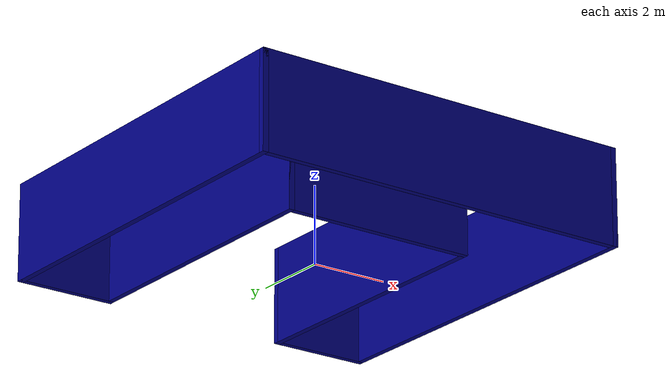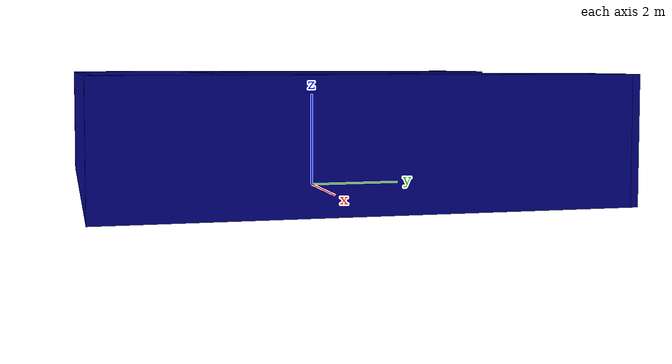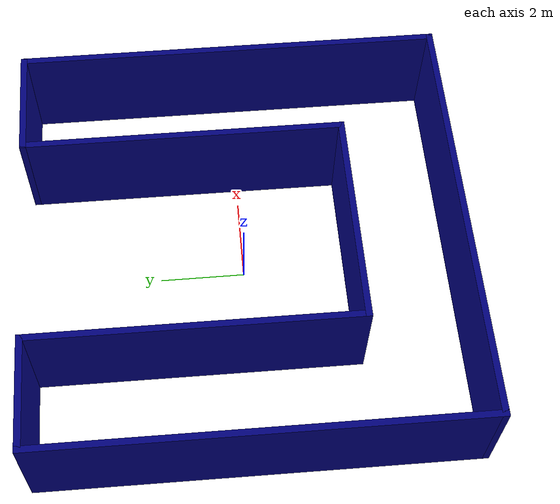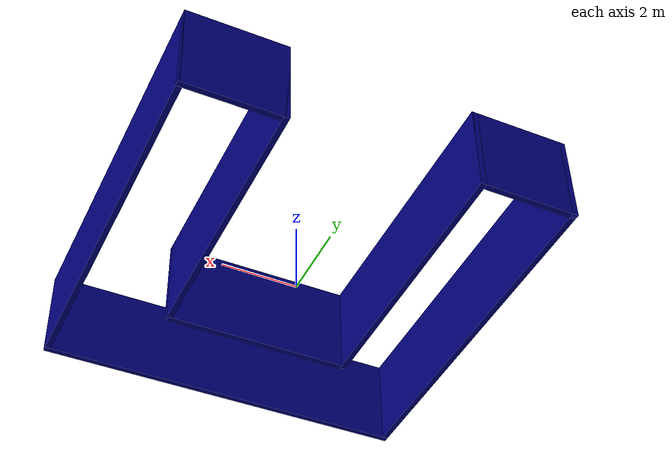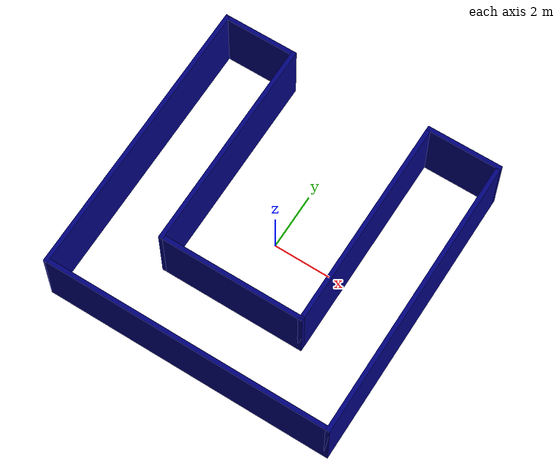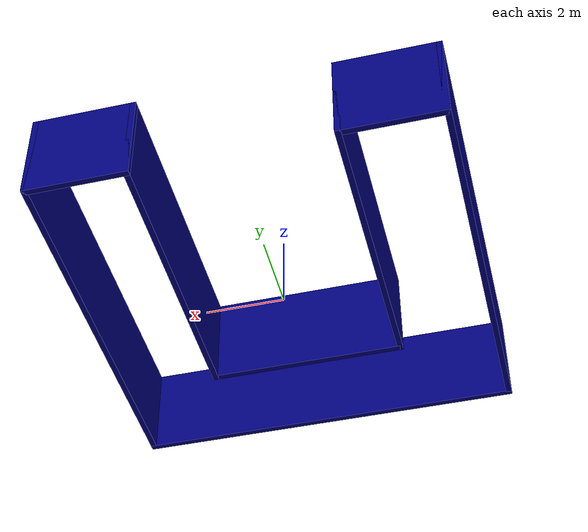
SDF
<?xml version='1.0'?>
<sdf version='1.6'>
  <model name='demo'>
    <pose frame=''>0 0 0 0 -0 0</pose>
    <link name='Wall_17'>
      <collision name='Wall_17_Collision'>
        <geometry>
          <box>
            <size>10.15 0.15 2.5</size>
          </box>
        </geometry>
        <pose frame=''>0 0 1.25 0 -0 0</pose>
      </collision>
      <visual name='Wall_17_Visual'>
        <pose frame=''>0 0 1.25 0 -0 0</pose>
        <geometry>
          <box>
            <size>10.15 0.15 2.5</size>
          </box>
        </geometry>
        <material>
          <script>
            <uri>file://media/materials/scripts/gazebo.material</uri>
            <name>Gazebo/Grey</name>
          </script>
          <ambient>0 0 0.498039 1</ambient>
        </material>
      </visual>
      <pose frame=''>0 -5 0 0 -0 0</pose>
    </link>
    <link name='Wall_20'>
      <collision name='Wall_20_Collision'>
        <geometry>
          <box>
            <size>10.15 0.15 2.5</size>
          </box>
        </geometry>
        <pose frame=''>0 0 1.25 0 -0 0</pose>
      </collision>
      <visual name='Wall_20_Visual'>
        <pose frame=''>0 0 1.25 0 -0 0</pose>
        <geometry>
          <box>
            <size>10.15 0.15 2.5</size>
          </box>
        </geometry>
        <material>
          <script>
            <uri>file://media/materials/scripts/gazebo.material</uri>
            <name>Gazebo/Grey</name>
          </script>
          <ambient>0 0 0.498039 1</ambient>
        </material>
      </visual>
      <pose frame=''>5 0 0 0 -0 1.5708</pose>
    </link>
    <link name='Wall_26'>
      <collision name='Wall_26_Collision'>
        <geometry>
          <box>
            <size>10.15 0.15 2.5</size>
          </box>
        </geometry>
        <pose frame=''>0 0 1.25 0 -0 0</pose>
      </collision>
      <visual name='Wall_26_Visual'>
        <pose frame=''>0 0 1.25 0 -0 0</pose>
        <geometry>
          <box>
            <size>10.15 0.15 2.5</size>
          </box>
        </geometry>
        <material>
          <script>
            <uri>file://media/materials/scripts/gazebo.material</uri>
            <name>Gazebo/Grey</name>
          </script>
          <ambient>0 0 0.498039 1</ambient>
        </material>
      </visual>
      <pose frame=''>-5 0 0 0 -0 1.5708</pose>
    </link>
    <link name='Wall_29'>
      <collision name='Wall_29_Collision'>
        <geometry>
          <box>
            <size>2.65 0.15 2.5</size>
          </box>
        </geometry>
        <pose frame=''>0 0 1.25 0 -0 0</pose>
      </collision>
      <visual name='Wall_29_Visual'>
        <pose frame=''>0 0 1.25 0 -0 0</pose>
        <geometry>
          <box>
            <size>2.65 0.15 2.5</size>
          </box>
        </geometry>
        <material>
          <script>
            <uri>file://media/materials/scripts/gazebo.material</uri>
            <name>Gazebo/Grey</name>
          </script>
          <ambient>0 0 0.498039 1</ambient>
        </material>
      </visual>
      <pose frame=''>3.75 5 0 0 -0 0</pose>
    </link>
    <link name='Wall_31'>
      <collision name='Wall_31_Collision'>
        <geometry>
          <box>
            <size>2.65 0.15 2.5</size>
          </box>
        </geometry>
        <pose frame=''>0 0 1.25 0 -0 0</pose>
      </collision>
      <visual name='Wall_31_Visual'>
        <pose frame=''>0 0 1.25 0 -0 0</pose>
        <geometry>
          <box>
            <size>2.65 0.15 2.5</size>
          </box>
        </geometry>
        <material>
          <script>
            <uri>file://media/materials/scripts/gazebo.material</uri>
            <name>Gazebo/Grey</name>
          </script>
          <ambient>0 0 0.498039 1</ambient>
        </material>
      </visual>
      <pose frame=''>-3.75 5 0 0 -0 0</pose>
    </link>
    <link name='Wall_33'>
      <collision name='Wall_33_Collision'>
        <geometry>
          <box>
            <size>7.65 0.15 2.5</size>
          </box>
        </geometry>
        <pose frame=''>0 0 1.25 0 -0 0</pose>
      </collision>
      <visual name='Wall_33_Visual'>
        <pose frame=''>0 0 1.25 0 -0 0</pose>
        <geometry>
          <box>
            <size>7.65 0.15 2.5</size>
          </box>
        </geometry>
        <material>
          <script>
            <uri>file://media/materials/scripts/gazebo.material</uri>
            <name>Gazebo/Grey</name>
          </script>
          <ambient>0 0 0.498039 1</ambient>
        </material>
      </visual>
      <pose frame=''>-2.5 1.25 0 0 0 -1.5708</pose>
    </link>
    <link name='Wall_35'>
      <collision name='Wall_35_Collision'>
        <geometry>
          <box>
            <size>7.65 0.15 2.5</size>
          </box>
        </geometry>
        <pose frame=''>0 0 1.25 0 -0 0</pose>
      </collision>
      <visual name='Wall_35_Visual'>
        <pose frame=''>0 0 1.25 0 -0 0</pose>
        <geometry>
          <box>
            <size>7.65 0.15 2.5</size>
          </box>
        </geometry>
        <material>
          <script>
            <uri>file://media/materials/scripts/gazebo.material</uri>
            <name>Gazebo/Grey</name>
          </script>
          <ambient>0 0 0.498039 1</ambient>
        </material>
      </visual>
      <pose frame=''>2.5 1.25 0 0 0 -1.5708</pose>
    </link>
    <link name='Wall_37'>
      <collision name='Wall_37_Collision'>
        <geometry>
          <box>
            <size>5.15 0.15 2.5</size>
          </box>
        </geometry>
        <pose frame=''>0 0 1.25 0 -0 0</pose>
      </collision>
      <visual name='Wall_37_Visual'>
        <pose frame=''>0 0 1.25 0 -0 0</pose>
        <geometry>
          <box>
            <size>5.15 0.15 2.5</size>
          </box>
        </geometry>
        <material>
          <script>
            <uri>file://media/materials/scripts/gazebo.material</uri>
            <name>Gazebo/Grey</name>
          </script>
          <ambient>0 0 0.498039 1</ambient>
        </material>
      </visual>
      <pose frame=''>0 -2.5 0 0 -0 0</pose>
    </link>
    <static>1</static>
  </model>
</sdf>
